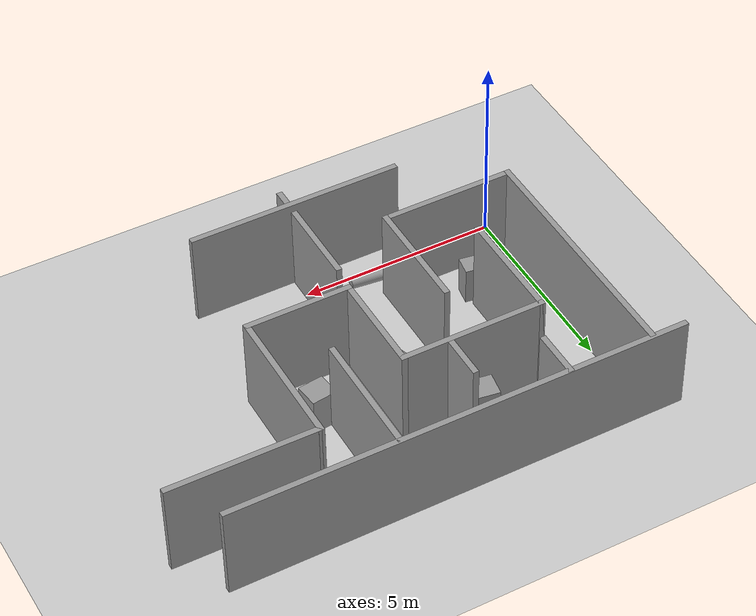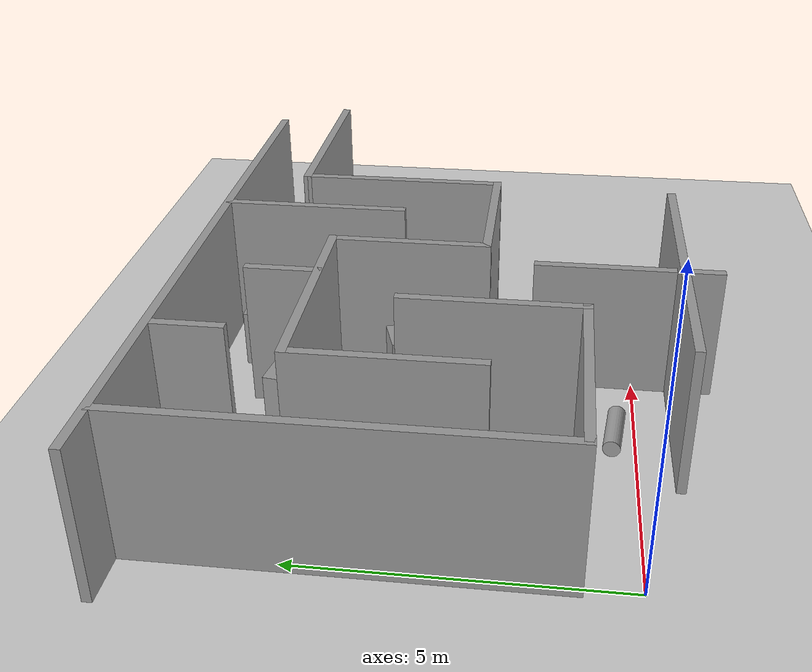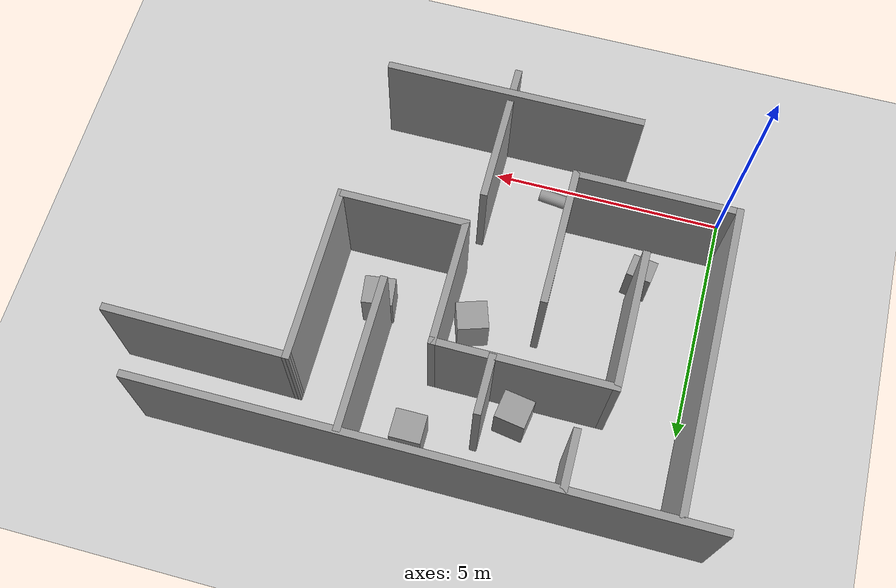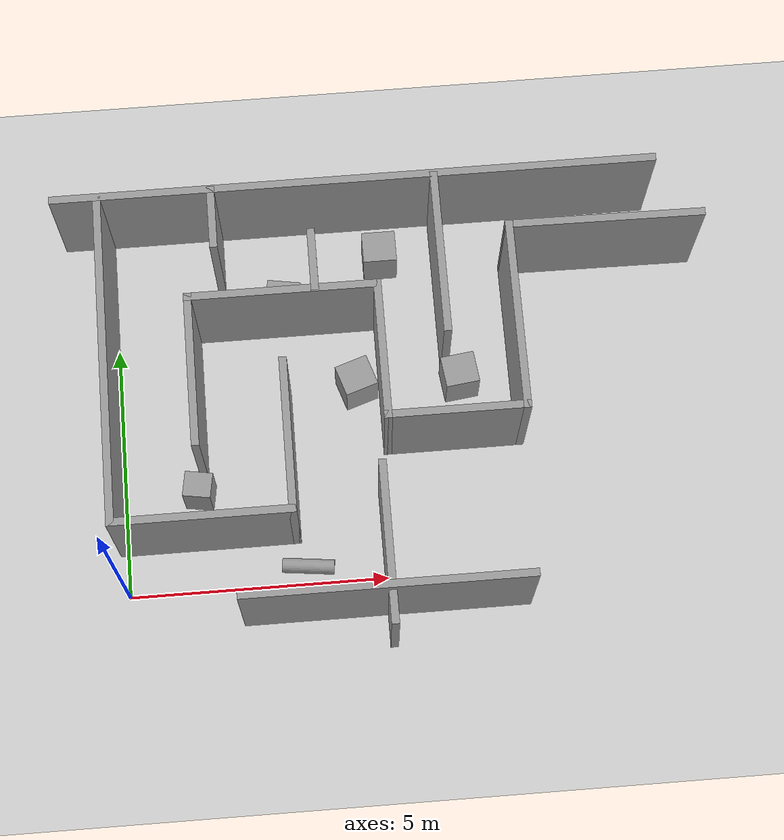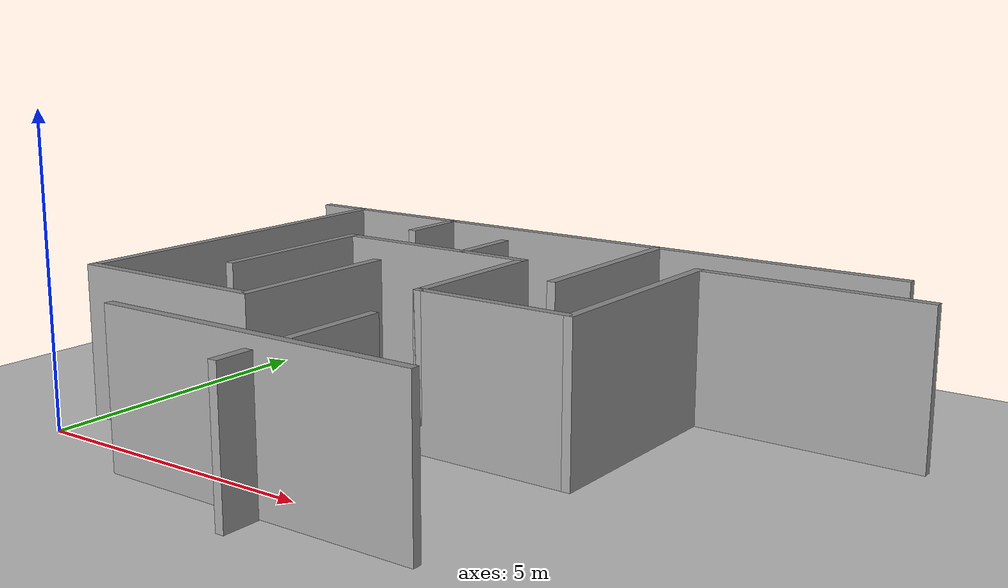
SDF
<sdf version="1.7">
 <world name="default">
  <light name="sun" type="directional">
   <pose>0 0 10 0 -0 0</pose>
   <diffuse>0.8 0.8 0.8 1</diffuse>
   <specular>0.2 0.2 0.2 1</specular>
   <attenuation>
    <range>1000</range>
    <constant>0.9</constant>
    <linear>0.01</linear>
    <quadratic>0.001</quadratic>
   </attenuation>
   <direction>-0.5 0.1 -0.9</direction>
   <spot><inner_angle>0</inner_angle><outer_angle>0</outer_angle><falloff>0</falloff></spot>
  </light>
  <model name="ground_plane">
   <static>1</static>
   <link name="link">
    <collision name="collision">
     <geometry><plane><normal>0 0 1</normal><size>100 100</size></plane></geometry>
     <surface>
      <contact><collide_bitmask>65535</collide_bitmask></contact>
      <friction><ode><mu>100</mu><mu2>50</mu2></ode></friction>
     </surface>
    </collision>
    <visual name="visual">
     <cast_shadows>0</cast_shadows>
     <geometry><plane><normal>0 0 1</normal><size>100 100</size></plane></geometry>
     <material>
      <script><uri>file://media/materials/scripts/gazebo.material</uri><name>Gazebo/Grey</name></script>
     </material>
    </visual>
   </link>
  </model>
  <gravity>0 0 -9.8</gravity>
  <magnetic_field>6e-06 2.3e-05 -4.2e-05</magnetic_field>
  <atmosphere type="adiabatic"/>
  <physics type="ode">
   <max_step_size>0.001</max_step_size>
   <real_time_factor>1</real_time_factor>
   <real_time_update_rate>1000</real_time_update_rate>
  </physics>
  <scene><ambient>0.4 0.4 0.4 1</ambient><background>0.7 0.7 0.7 1</background><shadows>1</shadows></scene>
  <spherical_coordinates>
   <surface_model>EARTH_WGS84</surface_model>
   <latitude_deg>0</latitude_deg>
   <longitude_deg>0</longitude_deg>
   <elevation>0</elevation>
   <heading_deg>0</heading_deg>
  </spherical_coordinates>
  <model name="maze">
   <pose>4.89605 3.3434 0 0 -0 0</pose>
   <link name="Wall_13">
    <collision name="Wall_13_Collision">
     <geometry><box><size>6.5 0.15 2.5</size></box></geometry>
     <pose>0 0 1.25 0 -0 0</pose>
    </collision>
    <visual name="Wall_13_Visual">
     <pose>0 0 1.25 0 -0 0</pose>
     <geometry><box><size>6.5 0.15 2.5</size></box></geometry>
     <material>
      <script><uri>file://media/materials/scripts/gazebo.material</uri><name>Gazebo/Grey</name></script>
      <ambient>1 1 1 1</ambient>
     </material>
     <meta><layer>0</layer></meta>
    </visual>
    <pose>-4.96307 0.735072 0 0 -0 -1.5708</pose>
   </link>
   <link name="Wall_14">
    <collision name="Wall_14_Collision">
     <geometry><box><size>3.5 0.15 2.5</size></box></geometry>
     <pose>0 0 1.25 0 -0 0</pose>
    </collision>
    <visual name="Wall_14_Visual">
     <pose>0 0 1.25 0 -0 0</pose>
     <geometry><box><size>3.5 0.15 2.5</size></box></geometry>
     <material>
      <script><uri>file://media/materials/scripts/gazebo.material</uri><name>Gazebo/Grey</name></script>
      <ambient>1 1 1 1</ambient>
     </material>
     <meta><layer>0</layer></meta>
    </visual>
    <pose>-3.28807 -2.43993 0 0 -0 0</pose>
   </link>
   <link name="Wall_15">
    <collision name="Wall_15_Collision">
     <geometry><box><size>3 0.15 2.5</size></box></geometry>
     <pose>0 0 1.25 0 -0 0</pose>
    </collision>
    <visual name="Wall_15_Visual">
     <pose>0 0 1.25 0 -0 0</pose>
     <geometry><box><size>3 0.15 2.5</size></box></geometry>
     <material>
      <script><uri>file://media/materials/scripts/gazebo.material</uri><name>Gazebo/Grey</name></script>
      <ambient>1 1 1 1</ambient>
     </material>
     <meta><layer>0</layer></meta>
    </visual>
    <pose>-1.61307 -1.01493 0 0 -0 1.5708</pose>
   </link>
   <link name="Wall_17">
    <collision name="Wall_17_Collision">
     <geometry><box><size>3 0.15 2.5</size></box></geometry>
     <pose>0 0 1.25 0 -0 0</pose>
    </collision>
    <visual name="Wall_17_Visual">
     <pose>0 0 1.25 0 -0 0</pose>
     <geometry><box><size>3 0.15 2.5</size></box></geometry>
     <material>
      <script><uri>file://media/materials/scripts/gazebo.material</uri><name>Gazebo/Grey</name></script>
      <ambient>1 1 1 1</ambient>
     </material>
     <meta><layer>0</layer></meta>
    </visual>
    <pose>-3.33007 0.390072 0 0 -0 1.5708</pose>
   </link>
   <link name="Wall_18">
    <collision name="Wall_18_Collision">
     <geometry><box><size>3.75 0.15 2.5</size></box></geometry>
     <pose>0 0 1.25 0 -0 0</pose>
    </collision>
    <visual name="Wall_18_Visual">
     <pose>0 0 1.25 0 -0 0</pose>
     <geometry><box><size>3.75 0.15 2.5</size></box></geometry>
     <material>
      <script><uri>file://media/materials/scripts/gazebo.material</uri><name>Gazebo/Grey</name></script>
      <ambient>1 1 1 1</ambient>
     </material>
     <meta><layer>0</layer></meta>
    </visual>
    <pose>-1.53007 1.81507 0 0 -0 0</pose>
   </link>
   <link name="Wall_22">
    <collision name="Wall_22_Collision">
     <geometry><box><size>1.25 0.15 2.5</size></box></geometry>
     <pose>0 0 1.25 0 -0 0</pose>
    </collision>
    <visual name="Wall_22_Visual">
     <pose>0 0 1.25 0 -0 0</pose>
     <geometry><box><size>1.25 0.15 2.5</size></box></geometry>
     <material>
      <script><uri>file://media/materials/scripts/gazebo.material</uri><name>Gazebo/Grey</name></script>
      <ambient>1 1 1 1</ambient>
     </material>
     <meta><layer>0</layer></meta>
    </visual>
    <pose>-2.77807 3.40607 0 0 -0 -1.5708</pose>
   </link>
   <link name="Wall_25">
    <collision name="Wall_25_Collision">
     <geometry><box><size>3.1 0.15 2.6</size></box></geometry>
     <pose>0 0 1.25 0 -0 0</pose>
    </collision>
    <visual name="Wall_25_Visual">
     <pose>0 0 1 0 -0 0</pose>
     <geometry><box><size>3.1 0.15 2.6</size></box></geometry>
     <material>
      <script><uri>file://media/materials/scripts/gazebo.material</uri><name>Gazebo/Grey</name></script>
      <ambient>1 1 1 1</ambient>
     </material>
     <meta><layer>0</layer></meta>
    </visual>
    <pose>0.096928 -3.13293 0 0 -0 1.5708</pose>
   </link>
   <link name="Wall_27">
    <collision name="Wall_27_Collision">
     <geometry><box><size>2.75 0.15 2.5</size></box></geometry>
     <pose>0 0 1.25 0 -0 0</pose>
    </collision>
    <visual name="Wall_27_Visual">
     <pose>0 0 1.25 0 -0 0</pose>
     <geometry><box><size>2.75 0.15 2.5</size></box></geometry>
     <material>
      <script><uri>file://media/materials/scripts/gazebo.material</uri><name>Gazebo/Grey</name></script>
      <ambient>1 1 1 1</ambient>
     </material>
     <meta><layer>0</layer></meta>
    </visual>
    <pose>0.269928 0.515072 0 0 -0 -1.5708</pose>
   </link>
   <link name="Wall_28">
    <collision name="Wall_28_Collision">
     <geometry><box><size>2.75 0.15 2.5</size></box></geometry>
     <pose>0 0 1.25 0 -0 0</pose>
    </collision>
    <visual name="Wall_28_Visual">
     <pose>0 0 1.25 0 -0 0</pose>
     <geometry><box><size>2.75 0.15 2.5</size></box></geometry>
     <material>
      <script><uri>file://media/materials/scripts/gazebo.material</uri><name>Gazebo/Grey</name></script>
      <ambient>1 1 1 1</ambient>
     </material>
     <meta><layer>0</layer></meta>
    </visual>
    <pose>1.56993 -0.784928 0 0 -0 0</pose>
   </link>
   <link name="Wall_29">
    <collision name="Wall_29_Collision">
     <geometry><box><size>3.75 0.15 2.5</size></box></geometry>
     <pose>0 0 1.25 0 -0 0</pose>
    </collision>
    <visual name="Wall_29_Visual">
     <pose>0 0 1.25 0 -0 0</pose>
     <geometry><box><size>3.75 0.15 2.5</size></box></geometry>
     <material>
      <script><uri>file://media/materials/scripts/gazebo.material</uri><name>Gazebo/Grey</name></script>
      <ambient>1 1 1 1</ambient>
     </material>
     <meta><layer>0</layer></meta>
    </visual>
    <pose>2.86993 1.01507 0 0 -0 1.5708</pose>
   </link>
   <link name="Wall_30">
    <collision name="Wall_30_Collision">
     <geometry><box><size>3.84014 0.15 2.5</size></box></geometry>
     <pose>0 0 1.25 0 -0 0</pose>
    </collision>
    <visual name="Wall_30_Visual">
     <pose>0 0 1.25 0 -0 0</pose>
     <geometry><box><size>3.84014 0.15 2.5</size></box></geometry>
     <material>
      <script><uri>file://media/materials/scripts/gazebo.material</uri><name>Gazebo/Grey</name></script>
      <ambient>1 1 1 1</ambient>
     </material>
     <meta><layer>0</layer></meta>
    </visual>
    <pose>4.71493 2.79907 0 0 -0 -0.008672</pose>
   </link>
   <link name="Wall_38">
    <collision name="Wall_38_Collision">
     <geometry><box><size>3.25 0.15 2.5</size></box></geometry>
     <pose>0 0 1.25 0 -0 0</pose>
    </collision>
    <visual name="Wall_38_Visual">
     <pose>0 0 1.25 0 -0 0</pose>
     <geometry><box><size>3.25 0.15 2.5</size></box></geometry>
     <material>
      <script><uri>file://media/materials/scripts/gazebo.material</uri><name>Gazebo/Grey</name></script>
      <ambient>1 1 1 1</ambient>
     </material>
     <meta><layer>0</layer></meta>
    </visual>
    <pose>1.52293 2.38307 0 0 -0 -1.5708</pose>
   </link>
   <link name="Wall_40">
    <collision name="Wall_40_Collision">
     <geometry><box><size>1.25 0.15 2.5</size></box></geometry>
     <pose>0 0 1.25 0 -0 0</pose>
    </collision>
    <visual name="Wall_40_Visual">
     <pose>0 0 1.25 0 -0 0</pose>
     <geometry><box><size>1.25 0.15 2.5</size></box></geometry>
     <material>
      <script><uri>file://media/materials/scripts/gazebo.material</uri><name>Gazebo/Grey</name></script>
      <ambient>1 1 1 1</ambient>
     </material>
     <meta><layer>0</layer></meta>
    </visual>
    <pose>-0.915072 2.39007 0 0 -0 1.5708</pose>
   </link>
   <link name="Wall_7">
    <collision name="Wall_7_Collision">
     <geometry><box><size>5.5 0.15 2.5</size></box></geometry>
     <pose>0 0 1.25 0 -0 0</pose>
    </collision>
    <visual name="Wall_7_Visual">
     <pose>0 0 1.25 0 -0 0</pose>
     <geometry><box><size>5.5 0.15 2.5</size></box></geometry>
     <material>
      <script><uri>file://media/materials/scripts/gazebo.material</uri><name>Gazebo/Grey</name></script>
      <ambient>1 1 1 1</ambient>
     </material>
     <meta><layer>0</layer></meta>
    </visual>
    <pose>0.022928 -3.97893 0 0 -0 0</pose>
   </link>
   <link name="Wall_9">
    <collision name="Wall_9_Collision">
     <geometry><box><size>11.7 0.15 2.5</size></box></geometry>
     <pose>0 0 1.25 0 -0 0</pose>
    </collision>
    <visual name="Wall_9_Visual">
     <pose>0 0 1.25 0 -0 0</pose>
     <geometry><box><size>11.7 0.15 2.5</size></box></geometry>
     <material>
      <script><uri>file://media/materials/scripts/gazebo.material</uri><name>Gazebo/Grey</name></script>
      <ambient>1 1 1 1</ambient>
     </material>
     <meta><layer>0</layer></meta>
    </visual>
    <pose>-0.023072 3.97907 0 0 -0 0</pose>
   </link>
   <static>1</static>
  </model>
  <model name="unit_box_clone">
   <pose>4.65646 3.84589 0.5 -3.14159 -0 -2.82274</pose>
   <link name="link">
    <inertial>
     <mass>1</mass>
     <inertia>
      <ixx>0.166667</ixx>
      <ixy>0</ixy>
      <ixz>0</ixz>
      <iyy>0.166667</iyy>
      <iyz>0</iyz>
      <izz>0.166667</izz>
     </inertia>
    </inertial>
    <collision name="collision"><geometry><box><size>0.655139 0.611184 1</size></box></geometry></collision>
    <visual name="visual">
     <geometry><box><size>0.655139 0.611184 1</size></box></geometry>
     <material>
      <script><name>Gazebo/Grey</name><uri>file://media/materials/scripts/gazebo.material</uri></script>
     </material>
    </visual>
   </link>
  </model>
  <model name="unit_box_clone_0">
   <pose>3.33743 5.58739 0.5 -0 -0 -0.160152</pose>
   <link name="link">
    <inertial>
     <mass>1</mass>
     <inertia>
      <ixx>0.166667</ixx>
      <ixy>0</ixy>
      <ixz>0</ixz>
      <iyy>0.166667</iyy>
      <iyz>0</iyz>
      <izz>0.166667</izz>
     </inertia>
    </inertial>
    <collision name="collision"><geometry><box><size>0.655139 0.611184 1</size></box></geometry></collision>
    <visual name="visual">
     <geometry><box><size>0.655139 0.611184 1</size></box></geometry>
     <material>
      <script><name>Gazebo/Grey</name><uri>file://media/materials/scripts/gazebo.material</uri></script>
     </material>
    </visual>
   </link>
  </model>
  <model name="unit_box_clone_1">
   <pose>5.30354 6.47724 0.499996 -6e-06 -7e-06 0.003184</pose>
   <link name="link">
    <inertial>
     <mass>1</mass>
     <inertia>
      <ixx>0.166667</ixx>
      <ixy>0</ixy>
      <ixz>0</ixz>
      <iyy>0.166667</iyy>
      <iyz>0</iyz>
      <izz>0.166667</izz>
     </inertia>
    </inertial>
    <collision name="collision"><geometry><box><size>0.655139 0.611184 1</size></box></geometry></collision>
    <visual name="visual">
     <geometry><box><size>0.655139 0.611184 1</size></box></geometry>
     <material>
      <script><name>Gazebo/Grey</name><uri>file://media/materials/scripts/gazebo.material</uri></script>
     </material>
    </visual>
   </link>
  </model>
  <model name="unit_box_clone_2">
   <pose>6.67449 3.81325 0.5 0 -0 0.127165</pose>
   <link name="link">
    <inertial>
     <mass>1</mass>
     <inertia>
      <ixx>0.166667</ixx>
      <ixy>0</ixy>
      <ixz>0</ixz>
      <iyy>0.166667</iyy>
      <iyz>0</iyz>
      <izz>0.166667</izz>
     </inertia>
    </inertial>
    <collision name="collision"><geometry><box><size>0.655139 0.611184 1</size></box></geometry></collision>
    <visual name="visual">
     <geometry><box><size>0.655139 0.611184 1</size></box></geometry>
     <material>
      <script><name>Gazebo/Grey</name><uri>file://media/materials/scripts/gazebo.material</uri></script>
     </material>
    </visual>
   </link>
  </model>
  <model name="unit_cylinder_clone">
   <pose>3.45926 0.332344 0.143067 -1.5708 0.341662 -1.68442</pose>
   <link name="link">
    <inertial>
     <mass>1</mass>
     <inertia><ixx>0.145833</ixx><ixy>0</ixy><ixz>0</ixz><iyy>0.145833</iyy><iyz>0</iyz><izz>0.125</izz></inertia>
    </inertial>
    <collision name="collision">
     <geometry><cylinder><radius>0.143067</radius><length>1</length></cylinder></geometry>
    </collision>
    <visual name="visual">
     <geometry><cylinder><radius>0.143067</radius><length>1</length></cylinder></geometry>
     <material>
      <script><name>Gazebo/Grey</name><uri>file://media/materials/scripts/gazebo.material</uri></script>
     </material>
    </visual>
   </link>
  </model>
  <model name="unit_box_clone_0_clone">
   <pose>1.46823 1.89732 0.500001 -1e-06 1e-06 -0.160319</pose>
   <link name="link">
    <inertial>
     <mass>1</mass>
     <inertia>
      <ixx>0.166667</ixx>
      <ixy>0</ixy>
      <ixz>0</ixz>
      <iyy>0.166667</iyy>
      <iyz>0</iyz>
      <izz>0.166667</izz>
     </inertia>
    </inertial>
    <collision name="collision"><geometry><box><size>0.536905 0.487445 1</size></box></geometry></collision>
    <visual name="visual">
     <geometry><box><size>0.536905 0.487445 1</size></box></geometry>
     <material>
      <script><name>Gazebo/Grey</name><uri>file://media/materials/scripts/gazebo.material</uri></script>
     </material>
    </visual>
   </link>
  </model>
 </world>
</sdf>
